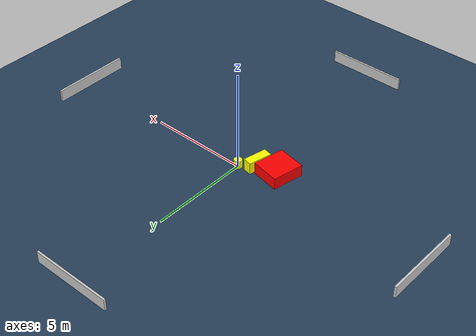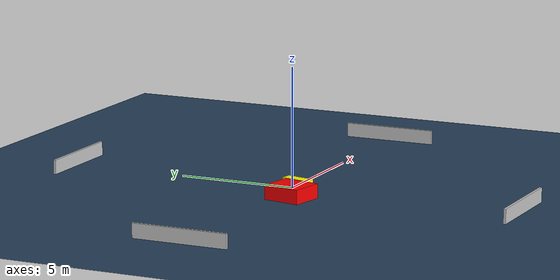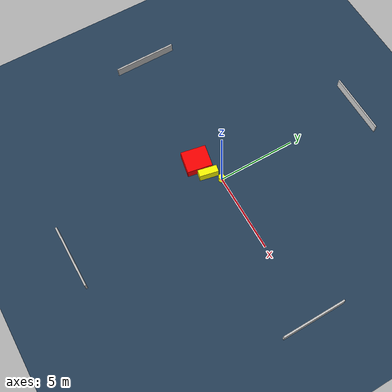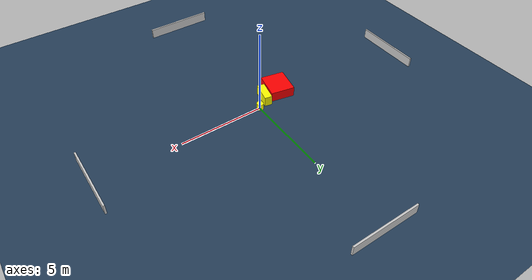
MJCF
<?xml version="1.0" ?>
<mujoco model="generated_environment">
  <option timestep="0.01" integrator="RK4" cone="elliptic"/>
  <default>
    <geom density="1"/>
  </default>
  <asset>
    <texture builtin="gradient" height="3072" name="skybox" rgb1="0.3 0.5 0.7" rgb2="0 0 0" type="skybox" width="512"/>
    <texture builtin="checker" height="300" name="groundplane" rgb1="0.2 0.3 0.4" rgb2="0.1 0.2 0.3" type="2d" width="300"/>
    <material name="groundplane" reflectance="0.2" texrepeat="5 5" texture="groundplane"/>
  </asset>
  <worldbody>
    <light dir="0 0 -1" directional="true" pos="0 0 1.5"/>
    <geom condim="3" friction="0.5 0.005 0.001" material="groundplane" name="floor" pos="0 0 0" size="0 0 0.05" type="plane"/>
    <body name="walls">
      <geom name="wall_1" condim="4" pos="-10.0 0.0 0.3" rgba="0.800000011920929 0.800000011920929 0.800000011920929 1.0" size="0.05 2.0 0.3" type="box"/>
      <geom name="wall_2" condim="4" pos="10.0 0.0 0.3" rgba="0.800000011920929 0.800000011920929 0.800000011920929 1.0" size="0.05 2.0 0.3" type="box"/>
      <geom name="wall_3" condim="4" pos="0.0 -10.0 0.3" rgba="0.800000011920929 0.800000011920929 0.800000011920929 1.0" size="2.0 0.05 0.3" type="box"/>
      <geom name="wall_4" condim="4" pos="0.0 10.0 0.3" rgba="0.800000011920929 0.800000011920929 0.800000011920929 1.0" size="2.0 0.05 0.3" type="box"/>
    </body>
    <body name="robot">
      <joint name="joint_x" type="slide" pos="0 0 0" axis="1 0 0"/>
      <joint name="joint_y" type="slide" pos="0 0 0" axis="0 1 0"/>
      <geom name="robot" type="cylinder" pos="0.0 0.0 0.2" size="0.2 0.2 0.0" mass="5.0" friction="1.0 0.005 0.0001" condim="4" rgba="1.0 1.0 0.0 1.0"/>
    </body>
    <body name="obstacle_1_movable">
      <geom name="obstacle_1_movable" condim="4" pos="-0.6862049880005744 -0.5546908246791732 0.3" euler="0 0 167.8598718029189" friction="0.0 0.005 0.001" rgba="1.0 1.0 0.0 1.0" size="0.22382005491096324 0.6014099818942443 0.3" type="box" mass="0.1"/>
      <joint type="free"/>
    </body>
    <body name="obstacle_2_static">
      <geom name="obstacle_2_static" condim="4" pos="-1.7466784260166324 -0.7639835030879388 0.3" euler="0 0 349.0980633931758" friction="0.0 0.005 0.001" rgba="1.0 0.0 0.0 1.0" size="0.7097812939395374 0.793070568859289 0.3" type="box"/>
    </body>
  </worldbody>
  <actuator>
    <motor name="actuator_x" joint="joint_x" gear="1" ctrlrange="-1 1"/>
    <motor name="actuator_y" joint="joint_y" gear="1" ctrlrange="-1 1"/>
  </actuator>
</mujoco>
